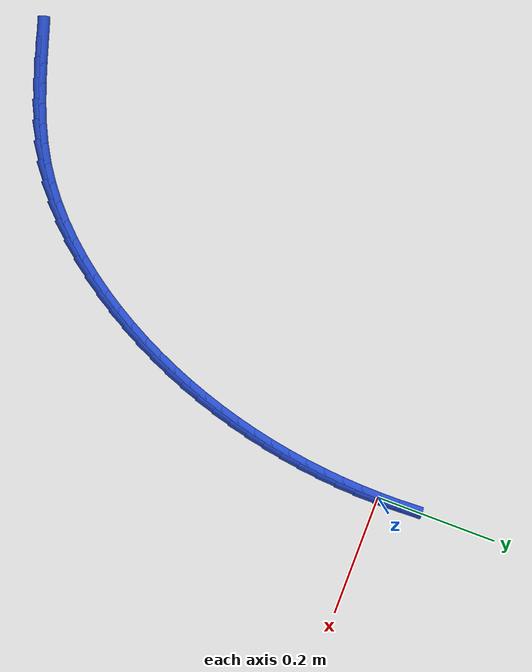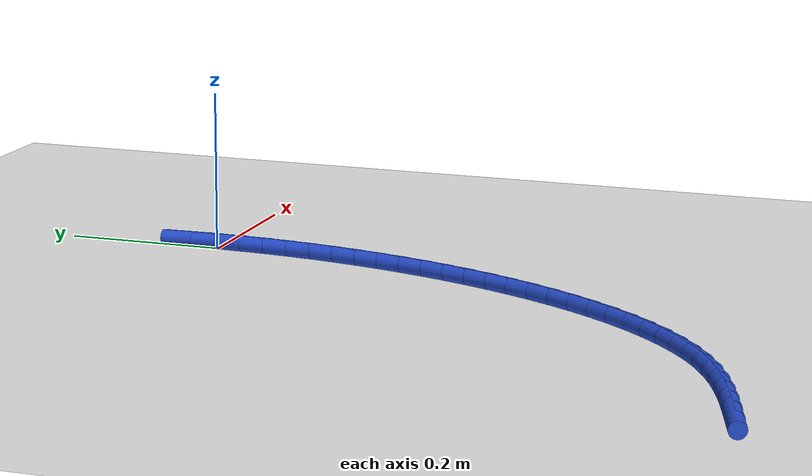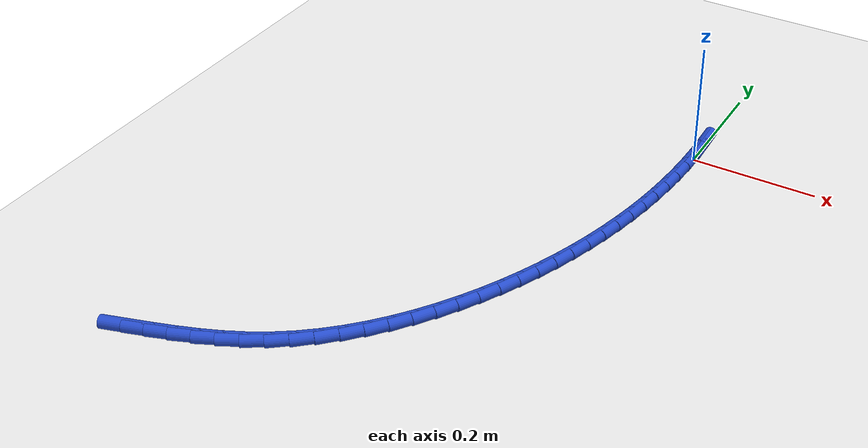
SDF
<sdf version="1.6">
 <world name="default">
  <model name="ground_plane">
   <static>1</static>
   <link name="link">
    <collision name="collision">
     <geometry><plane><normal>0 0 1</normal><size>100 100</size></plane></geometry>
     <surface><friction><ode><mu>100</mu><mu2>50</mu2></ode></friction></surface>
    </collision>
    <visual name="visual">
     <cast_shadows>0</cast_shadows>
     <geometry><plane><normal>0 0 1</normal><size>100 100</size></plane></geometry>
     <material>
      <script><uri>file://media/materials/scripts/gazebo.material</uri><name>Gazebo/WhiteGlow</name></script>
     </material>
    </visual>
   </link>
  </model>
  <model name="line">
   <link name="link_0">
    <pose>1.8648277366750676e-17 2.0816681711721685e-17 0.01 0 1.57 -1.5640540813541342</pose>
    <collision name="collision">
     <geometry><cylinder><radius>0.01</radius><length>0.08</length></cylinder></geometry>
    </collision>
    <visual name="visual">
     <material>
      <script><name>Gazebo/Blue</name><uri>file://media/materials/scripts/gazebo.material</uri></script>
     </material>
     <geometry><cylinder><radius>0.01</radius><length>0.08</length></cylinder></geometry>
    </visual>
   </link>
   <link name="link_1">
    <pose>-0.00022728111704300744 0.03370949264959678 0.01 0 1.57 -1.5330727734446878</pose>
    <collision name="collision">
     <geometry><cylinder><radius>0.01</radius><length>0.08</length></cylinder></geometry>
    </collision>
    <visual name="visual">
     <material>
      <script><name>Gazebo/Blue</name><uri>file://media/materials/scripts/gazebo.material</uri></script>
     </material>
     <geometry><cylinder><radius>0.01</radius><length>0.08</length></cylinder></geometry>
    </visual>
   </link>
   <link name="link_240">
    <pose>-0.4980255834183266 -0.7639884427678405 0.01 0 1.57 0.2947920259683788</pose>
    <collision name="collision">
     <geometry><cylinder><radius>0.01</radius><length>0.08</length></cylinder></geometry>
    </collision>
    <visual name="visual">
     <material>
      <script><name>Gazebo/Blue</name><uri>file://media/materials/scripts/gazebo.material</uri></script>
     </material>
     <geometry><cylinder><radius>0.01</radius><length>0.08</length></cylinder></geometry>
    </visual>
   </link>
   <link name="link_241">
    <pose>-0.46619365088438497 -0.7543230247924273 0.01 0 1.57 0.3141637816562939</pose>
    <collision name="collision">
     <geometry><cylinder><radius>0.01</radius><length>0.08</length></cylinder></geometry>
    </collision>
    <visual name="visual">
     <material>
      <script><name>Gazebo/Blue</name><uri>file://media/materials/scripts/gazebo.material</uri></script>
     </material>
     <geometry><cylinder><radius>0.01</radius><length>0.08</length></cylinder></geometry>
    </visual>
   </link>
   <link name="link_242">
    <pose>-0.43461202713292757 -0.7440613755062667 0.01 0 1.57 0.34528660001140105</pose>
    <collision name="collision">
     <geometry><cylinder><radius>0.01</radius><length>0.08</length></cylinder></geometry>
    </collision>
    <visual name="visual">
     <material>
      <script><name>Gazebo/Blue</name><uri>file://media/materials/scripts/gazebo.material</uri></script>
     </material>
     <geometry><cylinder><radius>0.01</radius><length>0.08</length></cylinder></geometry>
    </visual>
   </link>
   <link name="link_243">
    <pose>-0.4035051377215636 -0.732872345934618 0.01 0 1.57 0.3885450038447753</pose>
    <collision name="collision">
     <geometry><cylinder><radius>0.01</radius><length>0.08</length></cylinder></geometry>
    </collision>
    <visual name="visual">
     <material>
      <script><name>Gazebo/Blue</name><uri>file://media/materials/scripts/gazebo.material</uri></script>
     </material>
     <geometry><cylinder><radius>0.01</radius><length>0.08</length></cylinder></geometry>
    </visual>
   </link>
   <link name="link_244">
    <pose>-0.3730974082078983 -0.7204247871027392 0.01 0 1.57 0.44434092274453396</pose>
    <collision name="collision">
     <geometry><cylinder><radius>0.01</radius><length>0.08</length></cylinder></geometry>
    </collision>
    <visual name="visual">
     <material>
      <script><name>Gazebo/Blue</name><uri>file://media/materials/scripts/gazebo.material</uri></script>
     </material>
     <geometry><cylinder><radius>0.01</radius><length>0.08</length></cylinder></geometry>
    </visual>
   </link>
   <link name="link_245">
    <pose>-0.3436132641495405 -0.706387550035889 0.01 0 1.57 0.5128837599304371</pose>
    <collision name="collision">
     <geometry><cylinder><radius>0.01</radius><length>0.08</length></cylinder></geometry>
    </collision>
    <visual name="visual">
     <material>
      <script><name>Gazebo/Blue</name><uri>file://media/materials/scripts/gazebo.material</uri></script>
     </material>
     <geometry><cylinder><radius>0.01</radius><length>0.08</length></cylinder></geometry>
    </visual>
   </link>
   <link name="link_246">
    <pose>-0.31527693106698906 -0.6904299191206582 0.01 0 1.57 0.5894157472612384</pose>
    <collision name="collision">
     <geometry><cylinder><radius>0.01</radius><length>0.08</length></cylinder></geometry>
    </collision>
    <visual name="visual">
     <material>
      <script><name>Gazebo/Blue</name><uri>file://media/materials/scripts/gazebo.material</uri></script>
     </material>
     <geometry><cylinder><radius>0.01</radius><length>0.08</length></cylinder></geometry>
    </visual>
   </link>
   <link name="link_247">
    <pose>-0.2882500440678713 -0.6723567749089401 0.01 0 1.57 0.6625433547826964</pose>
    <collision name="collision">
     <geometry><cylinder><radius>0.01</radius><length>0.08</length></cylinder></geometry>
    </collision>
    <visual name="visual">
     <material>
      <script><name>Gazebo/Blue</name><uri>file://media/materials/scripts/gazebo.material</uri></script>
     </material>
     <geometry><cylinder><radius>0.01</radius><length>0.08</length></cylinder></geometry>
    </visual>
   </link>
   <link name="link_248">
    <pose>-0.2625430683096718 -0.6523004932447769 0.01 0 1.57 0.7305350482312232</pose>
    <collision name="collision">
     <geometry><cylinder><radius>0.01</radius><length>0.08</length></cylinder></geometry>
    </collision>
    <visual name="visual">
     <material>
      <script><name>Gazebo/Blue</name><uri>file://media/materials/scripts/gazebo.material</uri></script>
     </material>
     <geometry><cylinder><radius>0.01</radius><length>0.08</length></cylinder></geometry>
    </visual>
   </link>
   <link name="link_249">
    <pose>-0.23814410078534914 -0.6304419084692039 0.01 0 1.57 0.7934951877782178</pose>
    <collision name="collision">
     <geometry><cylinder><radius>0.01</radius><length>0.08</length></cylinder></geometry>
    </collision>
    <visual name="visual">
     <material>
      <script><name>Gazebo/Blue</name><uri>file://media/materials/scripts/gazebo.material</uri></script>
     </material>
     <geometry><cylinder><radius>0.01</radius><length>0.08</length></cylinder></geometry>
    </visual>
   </link>
   <link name="link_250">
    <pose>-0.21504123848786577 -0.60696185492326 0.01 0 1.57 0.851669633218884</pose>
    <collision name="collision">
     <geometry><cylinder><radius>0.01</radius><length>0.08</length></cylinder></geometry>
    </collision>
    <visual name="visual">
     <material>
      <script><name>Gazebo/Blue</name><uri>file://media/materials/scripts/gazebo.material</uri></script>
     </material>
     <geometry><cylinder><radius>0.01</radius><length>0.08</length></cylinder></geometry>
    </visual>
   </link>
   <link name="link_251">
    <pose>-0.19322257841018048 -0.58204116694798 0.01 0 1.57 0.90539467703722</pose>
    <collision name="collision">
     <geometry><cylinder><radius>0.01</radius><length>0.08</length></cylinder></geometry>
    </collision>
    <visual name="visual">
     <material>
      <script><name>Gazebo/Blue</name><uri>file://media/materials/scripts/gazebo.material</uri></script>
     </material>
     <geometry><cylinder><radius>0.01</radius><length>0.08</length></cylinder></geometry>
    </visual>
   </link>
   <link name="link_252">
    <pose>-0.17267621754525528 -0.5558606788844022 0.01 0 1.57 0.9550569389713116</pose>
    <collision name="collision">
     <geometry><cylinder><radius>0.01</radius><length>0.08</length></cylinder></geometry>
    </collision>
    <visual name="visual">
     <material>
      <script><name>Gazebo/Blue</name><uri>file://media/materials/scripts/gazebo.material</uri></script>
     </material>
     <geometry><cylinder><radius>0.01</radius><length>0.08</length></cylinder></geometry>
    </visual>
   </link>
   <link name="link_253">
    <pose>-0.1533902528860494 -0.5286012250735619 0.01 0 1.57 1.0010645899815773</pose>
    <collision name="collision">
     <geometry><cylinder><radius>0.01</radius><length>0.08</length></cylinder></geometry>
    </collision>
    <visual name="visual">
     <material>
      <script><name>Gazebo/Blue</name><uri>file://media/materials/scripts/gazebo.material</uri></script>
     </material>
     <geometry><cylinder><radius>0.01</radius><length>0.08</length></cylinder></geometry>
    </visual>
   </link>
   <link name="link_254">
    <pose>-0.1353527814255245 -0.5004436398564976 0.01 0 1.57 1.0438285262374878</pose>
    <collision name="collision">
     <geometry><cylinder><radius>0.01</radius><length>0.08</length></cylinder></geometry>
    </collision>
    <visual name="visual">
     <material>
      <script><name>Gazebo/Blue</name><uri>file://media/materials/scripts/gazebo.material</uri></script>
     </material>
     <geometry><cylinder><radius>0.01</radius><length>0.08</length></cylinder></geometry>
    </visual>
   </link>
   <link name="link_255">
    <pose>-0.11855190015664009 -0.4715687575742445 0.01 0 1.57 1.0837546040258261</pose>
    <collision name="collision">
     <geometry><cylinder><radius>0.01</radius><length>0.08</length></cylinder></geometry>
    </collision>
    <visual name="visual">
     <material>
      <script><name>Gazebo/Blue</name><uri>file://media/materials/scripts/gazebo.material</uri></script>
     </material>
     <geometry><cylinder><radius>0.01</radius><length>0.08</length></cylinder></geometry>
    </visual>
   </link>
   <link name="link_256">
    <pose>-0.10297567315785613 -0.4421571310641299 0.01 0 1.57 1.1216748649529527</pose>
    <collision name="collision">
     <geometry><cylinder><radius>0.01</radius><length>0.08</length></cylinder></geometry>
    </collision>
    <visual name="visual">
     <material>
      <script><name>Gazebo/Blue</name><uri>file://media/materials/scripts/gazebo.material</uri></script>
     </material>
     <geometry><cylinder><radius>0.01</radius><length>0.08</length></cylinder></geometry>
    </visual>
   </link>
   <link name="link_257">
    <pose>-0.0886069582976041 -0.41234478666674473 0.01 0 1.57 1.1586668594166736</pose>
    <collision name="collision">
     <geometry><cylinder><radius>0.01</radius><length>0.08</length></cylinder></geometry>
    </collision>
    <visual name="visual">
     <material>
      <script><name>Gazebo/Blue</name><uri>file://media/materials/scripts/gazebo.material</uri></script>
     </material>
     <geometry><cylinder><radius>0.01</radius><length>0.08</length></cylinder></geometry>
    </visual>
   </link>
   <link name="link_258">
    <pose>-0.07541776641201109 -0.3821749806757632 0.01 0 1.57 1.194799198386002</pose>
    <collision name="collision">
     <geometry><cylinder><radius>0.01</radius><length>0.08</length></cylinder></geometry>
    </collision>
    <visual name="visual">
     <material>
      <script><name>Gazebo/Blue</name><uri>file://media/materials/scripts/gazebo.material</uri></script>
     </material>
     <geometry><cylinder><radius>0.01</radius><length>0.08</length></cylinder></geometry>
    </visual>
   </link>
   <link name="link_259">
    <pose>-0.06337875285454167 -0.35167937651901704 0.01 0 1.57 1.2300254092697145</pose>
    <collision name="collision">
     <geometry><cylinder><radius>0.01</radius><length>0.08</length></cylinder></geometry>
    </collision>
    <visual name="visual">
     <material>
      <script><name>Gazebo/Blue</name><uri>file://media/materials/scripts/gazebo.material</uri></script>
     </material>
     <geometry><cylinder><radius>0.01</radius><length>0.08</length></cylinder></geometry>
    </visual>
   </link>
   <link name="link_260">
    <pose>-0.05246057297865878 -0.3208896376243345 0.01 0 1.57 1.2643105312810194</pose>
    <collision name="collision">
     <geometry><cylinder><radius>0.01</radius><length>0.08</length></cylinder></geometry>
    </collision>
    <visual name="visual">
     <material>
      <script><name>Gazebo/Blue</name><uri>file://media/materials/scripts/gazebo.material</uri></script>
     </material>
     <geometry><cylinder><radius>0.01</radius><length>0.08</length></cylinder></geometry>
    </visual>
   </link>
   <link name="link_261">
    <pose>-0.04263388213782676 -0.28983742741954716 0.01 0 1.57 1.2976304854450866</pose>
    <collision name="collision">
     <geometry><cylinder><radius>0.01</radius><length>0.08</length></cylinder></geometry>
    </collision>
    <visual name="visual">
     <material>
      <script><name>Gazebo/Blue</name><uri>file://media/materials/scripts/gazebo.material</uri></script>
     </material>
     <geometry><cylinder><radius>0.01</radius><length>0.08</length></cylinder></geometry>
    </visual>
   </link>
   <link name="link_262">
    <pose>-0.03386933568550873 -0.2585544093324832 0.01 0 1.57 1.3299715586605128</pose>
    <collision name="collision">
     <geometry><cylinder><radius>0.01</radius><length>0.08</length></cylinder></geometry>
    </collision>
    <visual name="visual">
     <material>
      <script><name>Gazebo/Blue</name><uri>file://media/materials/scripts/gazebo.material</uri></script>
     </material>
     <geometry><cylinder><radius>0.01</radius><length>0.08</length></cylinder></geometry>
    </visual>
   </link>
   <link name="link_263">
    <pose>-0.026137594998906978 -0.22707223191730133 0.01 0 1.57 1.3615976207228262</pose>
    <collision name="collision">
     <geometry><cylinder><radius>0.01</radius><length>0.08</length></cylinder></geometry>
    </collision>
    <visual name="visual">
     <material>
      <script><name>Gazebo/Blue</name><uri>file://media/materials/scripts/gazebo.material</uri></script>
     </material>
     <geometry><cylinder><radius>0.01</radius><length>0.08</length></cylinder></geometry>
    </visual>
   </link>
   <link name="link_264">
    <pose>-0.019415153920109934 -0.19540814234218898 0.01 0 1.57 1.3932103804988922</pose>
    <collision name="collision">
     <geometry><cylinder><radius>0.01</radius><length>0.08</length></cylinder></geometry>
    </collision>
    <visual name="visual">
     <material>
      <script><name>Gazebo/Blue</name><uri>file://media/materials/scripts/gazebo.material</uri></script>
     </material>
     <geometry><cylinder><radius>0.01</radius><length>0.08</length></cylinder></geometry>
    </visual>
   </link>
   <link name="link_265">
    <pose>-0.013695226581839854 -0.16353810242453776 0.01 0 1.57 1.4247978337199774</pose>
    <collision name="collision">
     <geometry><cylinder><radius>0.01</radius><length>0.08</length></cylinder></geometry>
    </collision>
    <visual name="visual">
     <material>
      <script><name>Gazebo/Blue</name><uri>file://media/materials/scripts/gazebo.material</uri></script>
     </material>
     <geometry><cylinder><radius>0.01</radius><length>0.08</length></cylinder></geometry>
    </visual>
   </link>
   <link name="link_266">
    <pose>-0.008974004526999512 -0.13143072223011198 0.01 0 1.57 1.4562056385186193</pose>
    <collision name="collision">
     <geometry><cylinder><radius>0.01</radius><length>0.08</length></cylinder></geometry>
    </collision>
    <visual name="visual">
     <material>
      <script><name>Gazebo/Blue</name><uri>file://media/materials/scripts/gazebo.material</uri></script>
     </material>
     <geometry><cylinder><radius>0.01</radius><length>0.08</length></cylinder></geometry>
    </visual>
   </link>
   <link name="link_267">
    <pose>-0.005247679298492326 -0.09905461182467983 0.01 0 1.57 1.487283784908851</pose>
    <collision name="collision">
     <geometry><cylinder><radius>0.01</radius><length>0.08</length></cylinder></geometry>
    </collision>
    <visual name="visual">
     <material>
      <script><name>Gazebo/Blue</name><uri>file://media/materials/scripts/gazebo.material</uri></script>
     </material>
     <geometry><cylinder><radius>0.01</radius><length>0.08</length></cylinder></geometry>
    </visual>
   </link>
   <link name="link_268">
    <pose>-0.0025124424392212624 -0.0663783812740065 0.01 0 1.57 1.5178897750164322</pose>
    <collision name="collision">
     <geometry><cylinder><radius>0.01</radius><length>0.08</length></cylinder></geometry>
    </collision>
    <visual name="visual">
     <material>
      <script><name>Gazebo/Blue</name><uri>file://media/materials/scripts/gazebo.material</uri></script>
     </material>
     <geometry><cylinder><radius>0.01</radius><length>0.08</length></cylinder></geometry>
    </visual>
   </link>
   <link name="link_269">
    <pose>-0.0007644854920894066 -0.03337064064385717 0.01 0 1.57 1.5478914085600106</pose>
    <collision name="collision">
     <geometry><cylinder><radius>0.01</radius><length>0.08</length></cylinder></geometry>
    </collision>
    <visual name="visual">
     <material>
      <script><name>Gazebo/Blue</name><uri>file://media/materials/scripts/gazebo.material</uri></script>
     </material>
     <geometry><cylinder><radius>0.01</radius><length>0.08</length></cylinder></geometry>
    </visual>
   </link>
   <link name="link_270">
    <pose>1.0408340855860843e-17 -4.163336342344337e-17 0.01 0 1.57 -1.5644236025163376</pose>
    <collision name="collision">
     <geometry><cylinder><radius>0.01</radius><length>0.08</length></cylinder></geometry>
    </collision>
    <visual name="visual">
     <material>
      <script><name>Gazebo/Blue</name><uri>file://media/materials/scripts/gazebo.material</uri></script>
     </material>
     <geometry><cylinder><radius>0.01</radius><length>0.08</length></cylinder></geometry>
    </visual>
   </link>
   <link name="link_271">
    <pose>-0.00021517750585609181 0.033764930591800704 0.01 0 1.57 -1.5359753447907805</pose>
    <collision name="collision">
     <geometry><cylinder><radius>0.01</radius><length>0.08</length></cylinder></geometry>
    </collision>
    <visual name="visual">
     <material>
      <script><name>Gazebo/Blue</name><uri>file://media/materials/scripts/gazebo.material</uri></script>
     </material>
     <geometry><cylinder><radius>0.01</radius><length>0.08</length></cylinder></geometry>
    </visual>
   </link>
  </model>
 </world>
</sdf>
